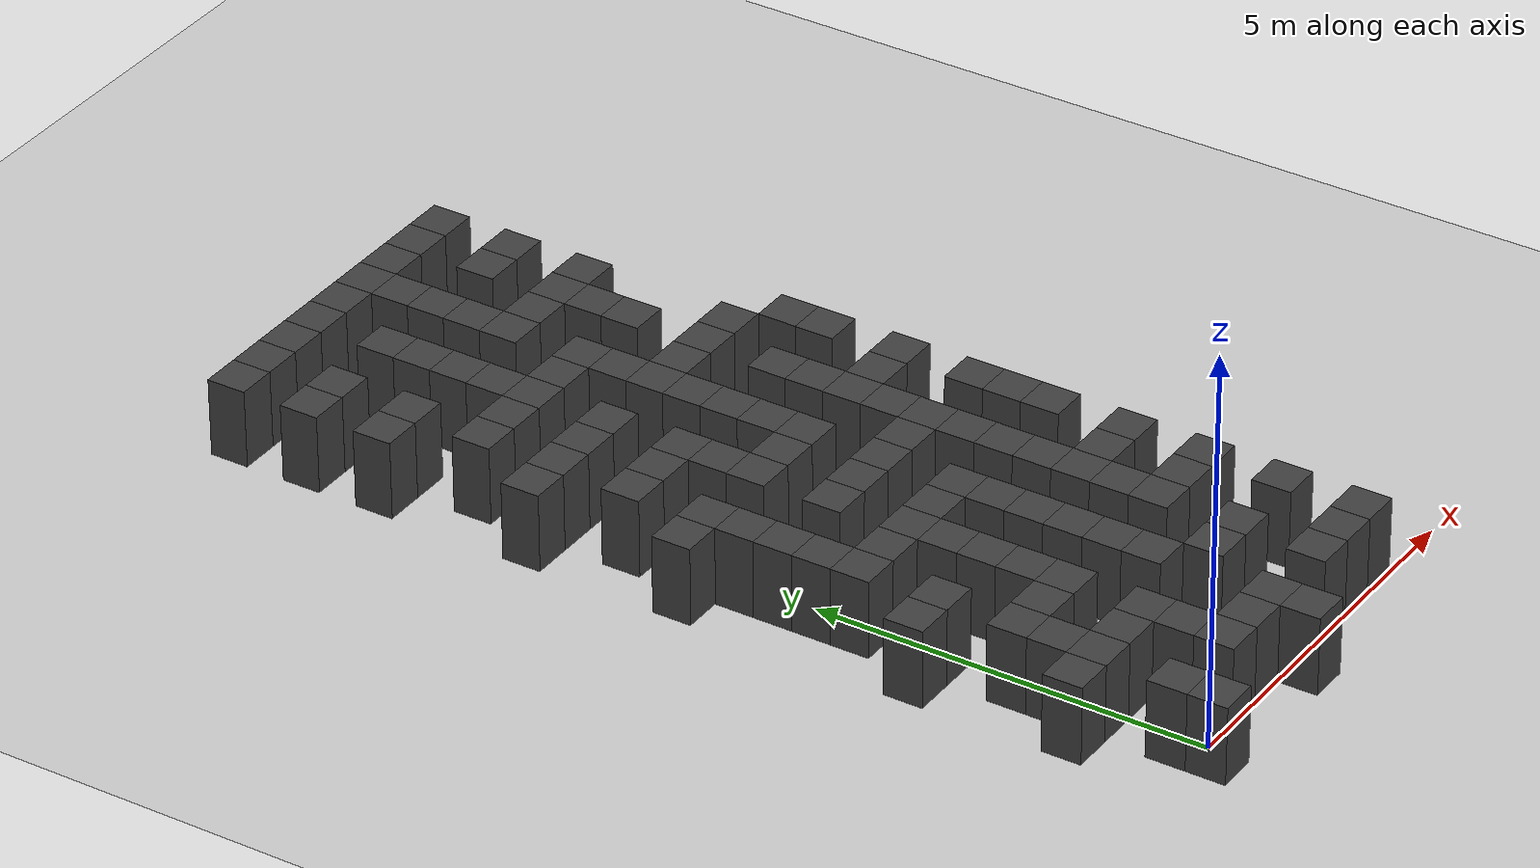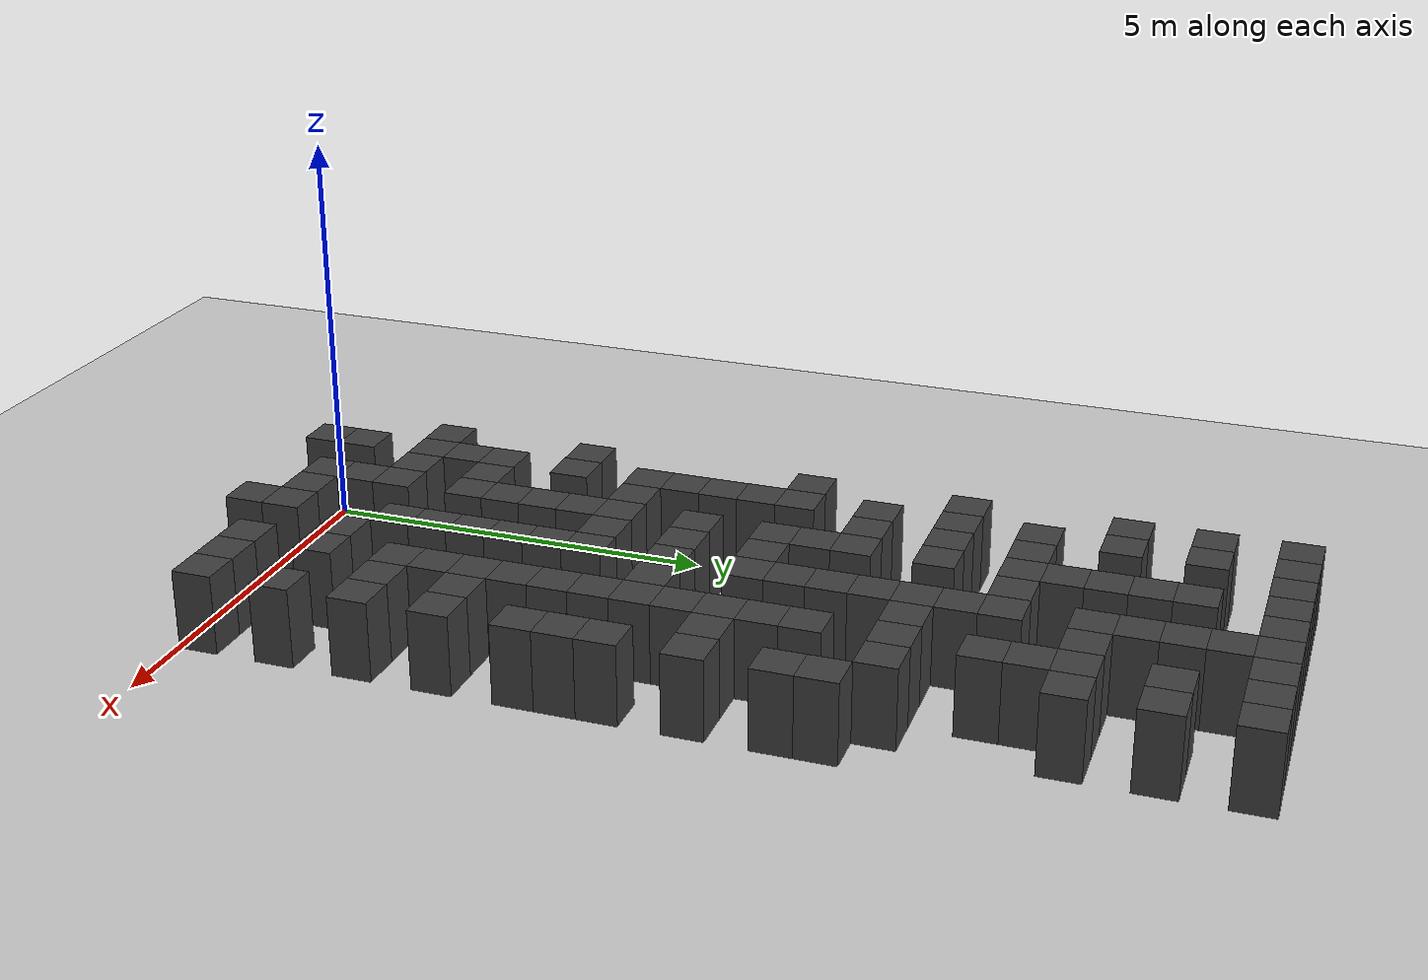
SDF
<sdf version="1.7">
 <world name="map_18553">
  <model name="ground_plane">
   <static>true</static>
   <link name="link">
    <collision name="collision">
     <geometry><plane><normal>0 0 1</normal><size>200 200</size></plane></geometry>
    </collision>
    <visual name="visual">
     <geometry><plane><normal>0 0 1</normal><size>200 200</size></plane></geometry>
     <material><ambient>0.8 0.8 0.8 1</ambient><diffuse>0.8 0.8 0.8 1</diffuse></material>
    </visual>
   </link>
  </model>
  <model name="maze_environment">
   <static>true</static>
   <link name="wall_23">
    <pose>-0.750 12.250 0.500 0 0 0</pose>
    <collision name="col"><geometry><box><size>0.5 0.5 1.0</size></box></geometry></collision>
    <visual name="vis">
     <geometry><box><size>0.5 0.5 1.0</size></box></geometry>
     <material><ambient>0.15 0.15 0.15 1</ambient><diffuse>0.25 0.25 0.25 1</diffuse></material>
    </visual>
   </link>
   <link name="wall_24">
    <pose>-0.250 12.250 0.500 0 0 0</pose>
    <collision name="col"><geometry><box><size>0.5 0.5 1.0</size></box></geometry></collision>
    <visual name="vis">
     <geometry><box><size>0.5 0.5 1.0</size></box></geometry>
     <material><ambient>0.15 0.15 0.15 1</ambient><diffuse>0.25 0.25 0.25 1</diffuse></material>
    </visual>
   </link>
   <link name="wall_25">
    <pose>0.250 12.250 0.500 0 0 0</pose>
    <collision name="col"><geometry><box><size>0.5 0.5 1.0</size></box></geometry></collision>
    <visual name="vis">
     <geometry><box><size>0.5 0.5 1.0</size></box></geometry>
     <material><ambient>0.15 0.15 0.15 1</ambient><diffuse>0.25 0.25 0.25 1</diffuse></material>
    </visual>
   </link>
   <link name="wall_26">
    <pose>0.750 12.250 0.500 0 0 0</pose>
    <collision name="col"><geometry><box><size>0.5 0.5 1.0</size></box></geometry></collision>
    <visual name="vis">
     <geometry><box><size>0.5 0.5 1.0</size></box></geometry>
     <material><ambient>0.15 0.15 0.15 1</ambient><diffuse>0.25 0.25 0.25 1</diffuse></material>
    </visual>
   </link>
   <link name="wall_27">
    <pose>1.250 12.250 0.500 0 0 0</pose>
    <collision name="col"><geometry><box><size>0.5 0.5 1.0</size></box></geometry></collision>
    <visual name="vis">
     <geometry><box><size>0.5 0.5 1.0</size></box></geometry>
     <material><ambient>0.15 0.15 0.15 1</ambient><diffuse>0.25 0.25 0.25 1</diffuse></material>
    </visual>
   </link>
   <link name="wall_28">
    <pose>1.750 12.250 0.500 0 0 0</pose>
    <collision name="col"><geometry><box><size>0.5 0.5 1.0</size></box></geometry></collision>
    <visual name="vis">
     <geometry><box><size>0.5 0.5 1.0</size></box></geometry>
     <material><ambient>0.15 0.15 0.15 1</ambient><diffuse>0.25 0.25 0.25 1</diffuse></material>
    </visual>
   </link>
   <link name="wall_29">
    <pose>2.250 12.250 0.500 0 0 0</pose>
    <collision name="col"><geometry><box><size>0.5 0.5 1.0</size></box></geometry></collision>
    <visual name="vis">
     <geometry><box><size>0.5 0.5 1.0</size></box></geometry>
     <material><ambient>0.15 0.15 0.15 1</ambient><diffuse>0.25 0.25 0.25 1</diffuse></material>
    </visual>
   </link>
   <link name="wall_30">
    <pose>2.750 12.250 0.500 0 0 0</pose>
    <collision name="col"><geometry><box><size>0.5 0.5 1.0</size></box></geometry></collision>
    <visual name="vis">
     <geometry><box><size>0.5 0.5 1.0</size></box></geometry>
     <material><ambient>0.15 0.15 0.15 1</ambient><diffuse>0.25 0.25 0.25 1</diffuse></material>
    </visual>
   </link>
   <link name="wall_31">
    <pose>3.250 12.250 0.500 0 0 0</pose>
    <collision name="col"><geometry><box><size>0.5 0.5 1.0</size></box></geometry></collision>
    <visual name="vis">
     <geometry><box><size>0.5 0.5 1.0</size></box></geometry>
     <material><ambient>0.15 0.15 0.15 1</ambient><diffuse>0.25 0.25 0.25 1</diffuse></material>
    </visual>
   </link>
   <link name="wall_54">
    <pose>1.750 11.750 0.500 0 0 0</pose>
    <collision name="col"><geometry><box><size>0.5 0.5 1.0</size></box></geometry></collision>
    <visual name="vis">
     <geometry><box><size>0.5 0.5 1.0</size></box></geometry>
     <material><ambient>0.15 0.15 0.15 1</ambient><diffuse>0.25 0.25 0.25 1</diffuse></material>
    </visual>
   </link>
   <link name="wall_73">
    <pose>-0.750 11.250 0.500 0 0 0</pose>
    <collision name="col"><geometry><box><size>0.5 0.5 1.0</size></box></geometry></collision>
    <visual name="vis">
     <geometry><box><size>0.5 0.5 1.0</size></box></geometry>
     <material><ambient>0.15 0.15 0.15 1</ambient><diffuse>0.25 0.25 0.25 1</diffuse></material>
    </visual>
   </link>
   <link name="wall_74">
    <pose>-0.250 11.250 0.500 0 0 0</pose>
    <collision name="col"><geometry><box><size>0.5 0.5 1.0</size></box></geometry></collision>
    <visual name="vis">
     <geometry><box><size>0.5 0.5 1.0</size></box></geometry>
     <material><ambient>0.15 0.15 0.15 1</ambient><diffuse>0.25 0.25 0.25 1</diffuse></material>
    </visual>
   </link>
   <link name="wall_75">
    <pose>0.750 11.250 0.500 0 0 0</pose>
    <collision name="col"><geometry><box><size>0.5 0.5 1.0</size></box></geometry></collision>
    <visual name="vis">
     <geometry><box><size>0.5 0.5 1.0</size></box></geometry>
     <material><ambient>0.15 0.15 0.15 1</ambient><diffuse>0.25 0.25 0.25 1</diffuse></material>
    </visual>
   </link>
   <link name="wall_76">
    <pose>1.750 11.250 0.500 0 0 0</pose>
    <collision name="col"><geometry><box><size>0.5 0.5 1.0</size></box></geometry></collision>
    <visual name="vis">
     <geometry><box><size>0.5 0.5 1.0</size></box></geometry>
     <material><ambient>0.15 0.15 0.15 1</ambient><diffuse>0.25 0.25 0.25 1</diffuse></material>
    </visual>
   </link>
   <link name="wall_77">
    <pose>2.750 11.250 0.500 0 0 0</pose>
    <collision name="col"><geometry><box><size>0.5 0.5 1.0</size></box></geometry></collision>
    <visual name="vis">
     <geometry><box><size>0.5 0.5 1.0</size></box></geometry>
     <material><ambient>0.15 0.15 0.15 1</ambient><diffuse>0.25 0.25 0.25 1</diffuse></material>
    </visual>
   </link>
   <link name="wall_78">
    <pose>3.250 11.250 0.500 0 0 0</pose>
    <collision name="col"><geometry><box><size>0.5 0.5 1.0</size></box></geometry></collision>
    <visual name="vis">
     <geometry><box><size>0.5 0.5 1.0</size></box></geometry>
     <material><ambient>0.15 0.15 0.15 1</ambient><diffuse>0.25 0.25 0.25 1</diffuse></material>
    </visual>
   </link>
   <link name="wall_101">
    <pose>0.750 10.750 0.500 0 0 0</pose>
    <collision name="col"><geometry><box><size>0.5 0.5 1.0</size></box></geometry></collision>
    <visual name="vis">
     <geometry><box><size>0.5 0.5 1.0</size></box></geometry>
     <material><ambient>0.15 0.15 0.15 1</ambient><diffuse>0.25 0.25 0.25 1</diffuse></material>
    </visual>
   </link>
   <link name="wall_102">
    <pose>1.750 10.750 0.500 0 0 0</pose>
    <collision name="col"><geometry><box><size>0.5 0.5 1.0</size></box></geometry></collision>
    <visual name="vis">
     <geometry><box><size>0.5 0.5 1.0</size></box></geometry>
     <material><ambient>0.15 0.15 0.15 1</ambient><diffuse>0.25 0.25 0.25 1</diffuse></material>
    </visual>
   </link>
   <link name="wall_124">
    <pose>-0.750 10.250 0.500 0 0 0</pose>
    <collision name="col"><geometry><box><size>0.5 0.5 1.0</size></box></geometry></collision>
    <visual name="vis">
     <geometry><box><size>0.5 0.5 1.0</size></box></geometry>
     <material><ambient>0.15 0.15 0.15 1</ambient><diffuse>0.25 0.25 0.25 1</diffuse></material>
    </visual>
   </link>
   <link name="wall_125">
    <pose>-0.250 10.250 0.500 0 0 0</pose>
    <collision name="col"><geometry><box><size>0.5 0.5 1.0</size></box></geometry></collision>
    <visual name="vis">
     <geometry><box><size>0.5 0.5 1.0</size></box></geometry>
     <material><ambient>0.15 0.15 0.15 1</ambient><diffuse>0.25 0.25 0.25 1</diffuse></material>
    </visual>
   </link>
   <link name="wall_126">
    <pose>0.750 10.250 0.500 0 0 0</pose>
    <collision name="col"><geometry><box><size>0.5 0.5 1.0</size></box></geometry></collision>
    <visual name="vis">
     <geometry><box><size>0.5 0.5 1.0</size></box></geometry>
     <material><ambient>0.15 0.15 0.15 1</ambient><diffuse>0.25 0.25 0.25 1</diffuse></material>
    </visual>
   </link>
   <link name="wall_127">
    <pose>1.750 10.250 0.500 0 0 0</pose>
    <collision name="col"><geometry><box><size>0.5 0.5 1.0</size></box></geometry></collision>
    <visual name="vis">
     <geometry><box><size>0.5 0.5 1.0</size></box></geometry>
     <material><ambient>0.15 0.15 0.15 1</ambient><diffuse>0.25 0.25 0.25 1</diffuse></material>
    </visual>
   </link>
   <link name="wall_128">
    <pose>2.250 10.250 0.500 0 0 0</pose>
    <collision name="col"><geometry><box><size>0.5 0.5 1.0</size></box></geometry></collision>
    <visual name="vis">
     <geometry><box><size>0.5 0.5 1.0</size></box></geometry>
     <material><ambient>0.15 0.15 0.15 1</ambient><diffuse>0.25 0.25 0.25 1</diffuse></material>
    </visual>
   </link>
   <link name="wall_129">
    <pose>2.750 10.250 0.500 0 0 0</pose>
    <collision name="col"><geometry><box><size>0.5 0.5 1.0</size></box></geometry></collision>
    <visual name="vis">
     <geometry><box><size>0.5 0.5 1.0</size></box></geometry>
     <material><ambient>0.15 0.15 0.15 1</ambient><diffuse>0.25 0.25 0.25 1</diffuse></material>
    </visual>
   </link>
   <link name="wall_130">
    <pose>3.250 10.250 0.500 0 0 0</pose>
    <collision name="col"><geometry><box><size>0.5 0.5 1.0</size></box></geometry></collision>
    <visual name="vis">
     <geometry><box><size>0.5 0.5 1.0</size></box></geometry>
     <material><ambient>0.15 0.15 0.15 1</ambient><diffuse>0.25 0.25 0.25 1</diffuse></material>
    </visual>
   </link>
   <link name="wall_153">
    <pose>0.750 9.750 0.500 0 0 0</pose>
    <collision name="col"><geometry><box><size>0.5 0.5 1.0</size></box></geometry></collision>
    <visual name="vis">
     <geometry><box><size>0.5 0.5 1.0</size></box></geometry>
     <material><ambient>0.15 0.15 0.15 1</ambient><diffuse>0.25 0.25 0.25 1</diffuse></material>
    </visual>
   </link>
   <link name="wall_154">
    <pose>2.750 9.750 0.500 0 0 0</pose>
    <collision name="col"><geometry><box><size>0.5 0.5 1.0</size></box></geometry></collision>
    <visual name="vis">
     <geometry><box><size>0.5 0.5 1.0</size></box></geometry>
     <material><ambient>0.15 0.15 0.15 1</ambient><diffuse>0.25 0.25 0.25 1</diffuse></material>
    </visual>
   </link>
   <link name="wall_176">
    <pose>-0.250 9.250 0.500 0 0 0</pose>
    <collision name="col"><geometry><box><size>0.5 0.5 1.0</size></box></geometry></collision>
    <visual name="vis">
     <geometry><box><size>0.5 0.5 1.0</size></box></geometry>
     <material><ambient>0.15 0.15 0.15 1</ambient><diffuse>0.25 0.25 0.25 1</diffuse></material>
    </visual>
   </link>
   <link name="wall_177">
    <pose>0.250 9.250 0.500 0 0 0</pose>
    <collision name="col"><geometry><box><size>0.5 0.5 1.0</size></box></geometry></collision>
    <visual name="vis">
     <geometry><box><size>0.5 0.5 1.0</size></box></geometry>
     <material><ambient>0.15 0.15 0.15 1</ambient><diffuse>0.25 0.25 0.25 1</diffuse></material>
    </visual>
   </link>
   <link name="wall_178">
    <pose>0.750 9.250 0.500 0 0 0</pose>
    <collision name="col"><geometry><box><size>0.5 0.5 1.0</size></box></geometry></collision>
    <visual name="vis">
     <geometry><box><size>0.5 0.5 1.0</size></box></geometry>
     <material><ambient>0.15 0.15 0.15 1</ambient><diffuse>0.25 0.25 0.25 1</diffuse></material>
    </visual>
   </link>
   <link name="wall_179">
    <pose>1.250 9.250 0.500 0 0 0</pose>
    <collision name="col"><geometry><box><size>0.5 0.5 1.0</size></box></geometry></collision>
    <visual name="vis">
     <geometry><box><size>0.5 0.5 1.0</size></box></geometry>
     <material><ambient>0.15 0.15 0.15 1</ambient><diffuse>0.25 0.25 0.25 1</diffuse></material>
    </visual>
   </link>
   <link name="wall_180">
    <pose>1.750 9.250 0.500 0 0 0</pose>
    <collision name="col"><geometry><box><size>0.5 0.5 1.0</size></box></geometry></collision>
    <visual name="vis">
     <geometry><box><size>0.5 0.5 1.0</size></box></geometry>
     <material><ambient>0.15 0.15 0.15 1</ambient><diffuse>0.25 0.25 0.25 1</diffuse></material>
    </visual>
   </link>
   <link name="wall_181">
    <pose>2.750 9.250 0.500 0 0 0</pose>
    <collision name="col"><geometry><box><size>0.5 0.5 1.0</size></box></geometry></collision>
    <visual name="vis">
     <geometry><box><size>0.5 0.5 1.0</size></box></geometry>
     <material><ambient>0.15 0.15 0.15 1</ambient><diffuse>0.25 0.25 0.25 1</diffuse></material>
    </visual>
   </link>
   <link name="wall_205">
    <pose>1.750 8.750 0.500 0 0 0</pose>
    <collision name="col"><geometry><box><size>0.5 0.5 1.0</size></box></geometry></collision>
    <visual name="vis">
     <geometry><box><size>0.5 0.5 1.0</size></box></geometry>
     <material><ambient>0.15 0.15 0.15 1</ambient><diffuse>0.25 0.25 0.25 1</diffuse></material>
    </visual>
   </link>
   <link name="wall_224">
    <pose>-0.750 8.250 0.500 0 0 0</pose>
    <collision name="col"><geometry><box><size>0.5 0.5 1.0</size></box></geometry></collision>
    <visual name="vis">
     <geometry><box><size>0.5 0.5 1.0</size></box></geometry>
     <material><ambient>0.15 0.15 0.15 1</ambient><diffuse>0.25 0.25 0.25 1</diffuse></material>
    </visual>
   </link>
   <link name="wall_225">
    <pose>-0.250 8.250 0.500 0 0 0</pose>
    <collision name="col"><geometry><box><size>0.5 0.5 1.0</size></box></geometry></collision>
    <visual name="vis">
     <geometry><box><size>0.5 0.5 1.0</size></box></geometry>
     <material><ambient>0.15 0.15 0.15 1</ambient><diffuse>0.25 0.25 0.25 1</diffuse></material>
    </visual>
   </link>
   <link name="wall_226">
    <pose>0.250 8.250 0.500 0 0 0</pose>
    <collision name="col"><geometry><box><size>0.5 0.5 1.0</size></box></geometry></collision>
    <visual name="vis">
     <geometry><box><size>0.5 0.5 1.0</size></box></geometry>
     <material><ambient>0.15 0.15 0.15 1</ambient><diffuse>0.25 0.25 0.25 1</diffuse></material>
    </visual>
   </link>
   <link name="wall_227">
    <pose>0.750 8.250 0.500 0 0 0</pose>
    <collision name="col"><geometry><box><size>0.5 0.5 1.0</size></box></geometry></collision>
    <visual name="vis">
     <geometry><box><size>0.5 0.5 1.0</size></box></geometry>
     <material><ambient>0.15 0.15 0.15 1</ambient><diffuse>0.25 0.25 0.25 1</diffuse></material>
    </visual>
   </link>
   <link name="wall_228">
    <pose>1.750 8.250 0.500 0 0 0</pose>
    <collision name="col"><geometry><box><size>0.5 0.5 1.0</size></box></geometry></collision>
    <visual name="vis">
     <geometry><box><size>0.5 0.5 1.0</size></box></geometry>
     <material><ambient>0.15 0.15 0.15 1</ambient><diffuse>0.25 0.25 0.25 1</diffuse></material>
    </visual>
   </link>
   <link name="wall_229">
    <pose>2.250 8.250 0.500 0 0 0</pose>
    <collision name="col"><geometry><box><size>0.5 0.5 1.0</size></box></geometry></collision>
    <visual name="vis">
     <geometry><box><size>0.5 0.5 1.0</size></box></geometry>
     <material><ambient>0.15 0.15 0.15 1</ambient><diffuse>0.25 0.25 0.25 1</diffuse></material>
    </visual>
   </link>
   <link name="wall_230">
    <pose>2.750 8.250 0.500 0 0 0</pose>
    <collision name="col"><geometry><box><size>0.5 0.5 1.0</size></box></geometry></collision>
    <visual name="vis">
     <geometry><box><size>0.5 0.5 1.0</size></box></geometry>
     <material><ambient>0.15 0.15 0.15 1</ambient><diffuse>0.25 0.25 0.25 1</diffuse></material>
    </visual>
   </link>
   <link name="wall_231">
    <pose>3.250 8.250 0.500 0 0 0</pose>
    <collision name="col"><geometry><box><size>0.5 0.5 1.0</size></box></geometry></collision>
    <visual name="vis">
     <geometry><box><size>0.5 0.5 1.0</size></box></geometry>
     <material><ambient>0.15 0.15 0.15 1</ambient><diffuse>0.25 0.25 0.25 1</diffuse></material>
    </visual>
   </link>
   <link name="wall_250">
    <pose>1.750 7.750 0.500 0 0 0</pose>
    <collision name="col"><geometry><box><size>0.5 0.5 1.0</size></box></geometry></collision>
    <visual name="vis">
     <geometry><box><size>0.5 0.5 1.0</size></box></geometry>
     <material><ambient>0.15 0.15 0.15 1</ambient><diffuse>0.25 0.25 0.25 1</diffuse></material>
    </visual>
   </link>
   <link name="wall_251">
    <pose>3.750 7.750 0.500 0 0 0</pose>
    <collision name="col"><geometry><box><size>0.5 0.5 1.0</size></box></geometry></collision>
    <visual name="vis">
     <geometry><box><size>0.5 0.5 1.0</size></box></geometry>
     <material><ambient>0.15 0.15 0.15 1</ambient><diffuse>0.25 0.25 0.25 1</diffuse></material>
    </visual>
   </link>
   <link name="wall_273">
    <pose>-0.250 7.250 0.500 0 0 0</pose>
    <collision name="col"><geometry><box><size>0.5 0.5 1.0</size></box></geometry></collision>
    <visual name="vis">
     <geometry><box><size>0.5 0.5 1.0</size></box></geometry>
     <material><ambient>0.15 0.15 0.15 1</ambient><diffuse>0.25 0.25 0.25 1</diffuse></material>
    </visual>
   </link>
   <link name="wall_274">
    <pose>0.250 7.250 0.500 0 0 0</pose>
    <collision name="col"><geometry><box><size>0.5 0.5 1.0</size></box></geometry></collision>
    <visual name="vis">
     <geometry><box><size>0.5 0.5 1.0</size></box></geometry>
     <material><ambient>0.15 0.15 0.15 1</ambient><diffuse>0.25 0.25 0.25 1</diffuse></material>
    </visual>
   </link>
   <link name="wall_275">
    <pose>0.750 7.250 0.500 0 0 0</pose>
    <collision name="col"><geometry><box><size>0.5 0.5 1.0</size></box></geometry></collision>
    <visual name="vis">
     <geometry><box><size>0.5 0.5 1.0</size></box></geometry>
     <material><ambient>0.15 0.15 0.15 1</ambient><diffuse>0.25 0.25 0.25 1</diffuse></material>
    </visual>
   </link>
   <link name="wall_276">
    <pose>1.750 7.250 0.500 0 0 0</pose>
    <collision name="col"><geometry><box><size>0.5 0.5 1.0</size></box></geometry></collision>
    <visual name="vis">
     <geometry><box><size>0.5 0.5 1.0</size></box></geometry>
     <material><ambient>0.15 0.15 0.15 1</ambient><diffuse>0.25 0.25 0.25 1</diffuse></material>
    </visual>
   </link>
   <link name="wall_277">
    <pose>2.750 7.250 0.500 0 0 0</pose>
    <collision name="col"><geometry><box><size>0.5 0.5 1.0</size></box></geometry></collision>
    <visual name="vis">
     <geometry><box><size>0.5 0.5 1.0</size></box></geometry>
     <material><ambient>0.15 0.15 0.15 1</ambient><diffuse>0.25 0.25 0.25 1</diffuse></material>
    </visual>
   </link>
   <link name="wall_278">
    <pose>3.750 7.250 0.500 0 0 0</pose>
    <collision name="col"><geometry><box><size>0.5 0.5 1.0</size></box></geometry></collision>
    <visual name="vis">
     <geometry><box><size>0.5 0.5 1.0</size></box></geometry>
     <material><ambient>0.15 0.15 0.15 1</ambient><diffuse>0.25 0.25 0.25 1</diffuse></material>
    </visual>
   </link>
   <link name="wall_297">
    <pose>0.750 6.750 0.500 0 0 0</pose>
    <collision name="col"><geometry><box><size>0.5 0.5 1.0</size></box></geometry></collision>
    <visual name="vis">
     <geometry><box><size>0.5 0.5 1.0</size></box></geometry>
     <material><ambient>0.15 0.15 0.15 1</ambient><diffuse>0.25 0.25 0.25 1</diffuse></material>
    </visual>
   </link>
   <link name="wall_298">
    <pose>1.750 6.750 0.500 0 0 0</pose>
    <collision name="col"><geometry><box><size>0.5 0.5 1.0</size></box></geometry></collision>
    <visual name="vis">
     <geometry><box><size>0.5 0.5 1.0</size></box></geometry>
     <material><ambient>0.15 0.15 0.15 1</ambient><diffuse>0.25 0.25 0.25 1</diffuse></material>
    </visual>
   </link>
   <link name="wall_299">
    <pose>2.750 6.750 0.500 0 0 0</pose>
    <collision name="col"><geometry><box><size>0.5 0.5 1.0</size></box></geometry></collision>
    <visual name="vis">
     <geometry><box><size>0.5 0.5 1.0</size></box></geometry>
     <material><ambient>0.15 0.15 0.15 1</ambient><diffuse>0.25 0.25 0.25 1</diffuse></material>
    </visual>
   </link>
   <link name="wall_321">
    <pose>-0.750 6.250 0.500 0 0 0</pose>
    <collision name="col"><geometry><box><size>0.5 0.5 1.0</size></box></geometry></collision>
    <visual name="vis">
     <geometry><box><size>0.5 0.5 1.0</size></box></geometry>
     <material><ambient>0.15 0.15 0.15 1</ambient><diffuse>0.25 0.25 0.25 1</diffuse></material>
    </visual>
   </link>
   <link name="wall_322">
    <pose>-0.250 6.250 0.500 0 0 0</pose>
    <collision name="col"><geometry><box><size>0.5 0.5 1.0</size></box></geometry></collision>
    <visual name="vis">
     <geometry><box><size>0.5 0.5 1.0</size></box></geometry>
     <material><ambient>0.15 0.15 0.15 1</ambient><diffuse>0.25 0.25 0.25 1</diffuse></material>
    </visual>
   </link>
   <link name="wall_323">
    <pose>0.750 6.250 0.500 0 0 0</pose>
    <collision name="col"><geometry><box><size>0.5 0.5 1.0</size></box></geometry></collision>
    <visual name="vis">
     <geometry><box><size>0.5 0.5 1.0</size></box></geometry>
     <material><ambient>0.15 0.15 0.15 1</ambient><diffuse>0.25 0.25 0.25 1</diffuse></material>
    </visual>
   </link>
   <link name="wall_324">
    <pose>1.250 6.250 0.500 0 0 0</pose>
    <collision name="col"><geometry><box><size>0.5 0.5 1.0</size></box></geometry></collision>
    <visual name="vis">
     <geometry><box><size>0.5 0.5 1.0</size></box></geometry>
     <material><ambient>0.15 0.15 0.15 1</ambient><diffuse>0.25 0.25 0.25 1</diffuse></material>
    </visual>
   </link>
   <link name="wall_325">
    <pose>1.750 6.250 0.500 0 0 0</pose>
    <collision name="col"><geometry><box><size>0.5 0.5 1.0</size></box></geometry></collision>
    <visual name="vis">
     <geometry><box><size>0.5 0.5 1.0</size></box></geometry>
     <material><ambient>0.15 0.15 0.15 1</ambient><diffuse>0.25 0.25 0.25 1</diffuse></material>
    </visual>
   </link>
   <link name="wall_326">
    <pose>2.750 6.250 0.500 0 0 0</pose>
    <collision name="col"><geometry><box><size>0.5 0.5 1.0</size></box></geometry></collision>
    <visual name="vis">
     <geometry><box><size>0.5 0.5 1.0</size></box></geometry>
     <material><ambient>0.15 0.15 0.15 1</ambient><diffuse>0.25 0.25 0.25 1</diffuse></material>
    </visual>
   </link>
   <link name="wall_327">
    <pose>3.250 6.250 0.500 0 0 0</pose>
    <collision name="col"><geometry><box><size>0.5 0.5 1.0</size></box></geometry></collision>
    <visual name="vis">
     <geometry><box><size>0.5 0.5 1.0</size></box></geometry>
     <material><ambient>0.15 0.15 0.15 1</ambient><diffuse>0.25 0.25 0.25 1</diffuse></material>
    </visual>
   </link>
   <link name="wall_328">
    <pose>3.750 6.250 0.500 0 0 0</pose>
    <collision name="col"><geometry><box><size>0.5 0.5 1.0</size></box></geometry></collision>
    <visual name="vis">
     <geometry><box><size>0.5 0.5 1.0</size></box></geometry>
     <material><ambient>0.15 0.15 0.15 1</ambient><diffuse>0.25 0.25 0.25 1</diffuse></material>
    </visual>
   </link>
   <link name="wall_346">
    <pose>-0.250 5.750 0.500 0 0 0</pose>
    <collision name="col"><geometry><box><size>0.5 0.5 1.0</size></box></geometry></collision>
    <visual name="vis">
     <geometry><box><size>0.5 0.5 1.0</size></box></geometry>
     <material><ambient>0.15 0.15 0.15 1</ambient><diffuse>0.25 0.25 0.25 1</diffuse></material>
    </visual>
   </link>
   <link name="wall_347">
    <pose>2.750 5.750 0.500 0 0 0</pose>
    <collision name="col"><geometry><box><size>0.5 0.5 1.0</size></box></geometry></collision>
    <visual name="vis">
     <geometry><box><size>0.5 0.5 1.0</size></box></geometry>
     <material><ambient>0.15 0.15 0.15 1</ambient><diffuse>0.25 0.25 0.25 1</diffuse></material>
    </visual>
   </link>
   <link name="wall_370">
    <pose>-0.250 5.250 0.500 0 0 0</pose>
    <collision name="col"><geometry><box><size>0.5 0.5 1.0</size></box></geometry></collision>
    <visual name="vis">
     <geometry><box><size>0.5 0.5 1.0</size></box></geometry>
     <material><ambient>0.15 0.15 0.15 1</ambient><diffuse>0.25 0.25 0.25 1</diffuse></material>
    </visual>
   </link>
   <link name="wall_371">
    <pose>0.750 5.250 0.500 0 0 0</pose>
    <collision name="col"><geometry><box><size>0.5 0.5 1.0</size></box></geometry></collision>
    <visual name="vis">
     <geometry><box><size>0.5 0.5 1.0</size></box></geometry>
     <material><ambient>0.15 0.15 0.15 1</ambient><diffuse>0.25 0.25 0.25 1</diffuse></material>
    </visual>
   </link>
   <link name="wall_372">
    <pose>1.250 5.250 0.500 0 0 0</pose>
    <collision name="col"><geometry><box><size>0.5 0.5 1.0</size></box></geometry></collision>
    <visual name="vis">
     <geometry><box><size>0.5 0.5 1.0</size></box></geometry>
     <material><ambient>0.15 0.15 0.15 1</ambient><diffuse>0.25 0.25 0.25 1</diffuse></material>
    </visual>
   </link>
   <link name="wall_373">
    <pose>1.750 5.250 0.500 0 0 0</pose>
    <collision name="col"><geometry><box><size>0.5 0.5 1.0</size></box></geometry></collision>
    <visual name="vis">
     <geometry><box><size>0.5 0.5 1.0</size></box></geometry>
     <material><ambient>0.15 0.15 0.15 1</ambient><diffuse>0.25 0.25 0.25 1</diffuse></material>
    </visual>
   </link>
   <link name="wall_374">
    <pose>2.250 5.250 0.500 0 0 0</pose>
    <collision name="col"><geometry><box><size>0.5 0.5 1.0</size></box></geometry></collision>
    <visual name="vis">
     <geometry><box><size>0.5 0.5 1.0</size></box></geometry>
     <material><ambient>0.15 0.15 0.15 1</ambient><diffuse>0.25 0.25 0.25 1</diffuse></material>
    </visual>
   </link>
   <link name="wall_375">
    <pose>2.750 5.250 0.500 0 0 0</pose>
    <collision name="col"><geometry><box><size>0.5 0.5 1.0</size></box></geometry></collision>
    <visual name="vis">
     <geometry><box><size>0.5 0.5 1.0</size></box></geometry>
     <material><ambient>0.15 0.15 0.15 1</ambient><diffuse>0.25 0.25 0.25 1</diffuse></material>
    </visual>
   </link>
   <link name="wall_376">
    <pose>3.750 5.250 0.500 0 0 0</pose>
    <collision name="col"><geometry><box><size>0.5 0.5 1.0</size></box></geometry></collision>
    <visual name="vis">
     <geometry><box><size>0.5 0.5 1.0</size></box></geometry>
     <material><ambient>0.15 0.15 0.15 1</ambient><diffuse>0.25 0.25 0.25 1</diffuse></material>
    </visual>
   </link>
   <link name="wall_395">
    <pose>-0.250 4.750 0.500 0 0 0</pose>
    <collision name="col"><geometry><box><size>0.5 0.5 1.0</size></box></geometry></collision>
    <visual name="vis">
     <geometry><box><size>0.5 0.5 1.0</size></box></geometry>
     <material><ambient>0.15 0.15 0.15 1</ambient><diffuse>0.25 0.25 0.25 1</diffuse></material>
    </visual>
   </link>
   <link name="wall_396">
    <pose>2.750 4.750 0.500 0 0 0</pose>
    <collision name="col"><geometry><box><size>0.5 0.5 1.0</size></box></geometry></collision>
    <visual name="vis">
     <geometry><box><size>0.5 0.5 1.0</size></box></geometry>
     <material><ambient>0.15 0.15 0.15 1</ambient><diffuse>0.25 0.25 0.25 1</diffuse></material>
    </visual>
   </link>
   <link name="wall_397">
    <pose>3.750 4.750 0.500 0 0 0</pose>
    <collision name="col"><geometry><box><size>0.5 0.5 1.0</size></box></geometry></collision>
    <visual name="vis">
     <geometry><box><size>0.5 0.5 1.0</size></box></geometry>
     <material><ambient>0.15 0.15 0.15 1</ambient><diffuse>0.25 0.25 0.25 1</diffuse></material>
    </visual>
   </link>
   <link name="wall_425">
    <pose>-0.250 4.250 0.500 0 0 0</pose>
    <collision name="col"><geometry><box><size>0.5 0.5 1.0</size></box></geometry></collision>
    <visual name="vis">
     <geometry><box><size>0.5 0.5 1.0</size></box></geometry>
     <material><ambient>0.15 0.15 0.15 1</ambient><diffuse>0.25 0.25 0.25 1</diffuse></material>
    </visual>
   </link>
   <link name="wall_426">
    <pose>0.250 4.250 0.500 0 0 0</pose>
    <collision name="col"><geometry><box><size>0.5 0.5 1.0</size></box></geometry></collision>
    <visual name="vis">
     <geometry><box><size>0.5 0.5 1.0</size></box></geometry>
     <material><ambient>0.15 0.15 0.15 1</ambient><diffuse>0.25 0.25 0.25 1</diffuse></material>
    </visual>
   </link>
   <link name="wall_427">
    <pose>0.750 4.250 0.500 0 0 0</pose>
    <collision name="col"><geometry><box><size>0.5 0.5 1.0</size></box></geometry></collision>
    <visual name="vis">
     <geometry><box><size>0.5 0.5 1.0</size></box></geometry>
     <material><ambient>0.15 0.15 0.15 1</ambient><diffuse>0.25 0.25 0.25 1</diffuse></material>
    </visual>
   </link>
   <link name="wall_428">
    <pose>1.250 4.250 0.500 0 0 0</pose>
    <collision name="col"><geometry><box><size>0.5 0.5 1.0</size></box></geometry></collision>
    <visual name="vis">
     <geometry><box><size>0.5 0.5 1.0</size></box></geometry>
     <material><ambient>0.15 0.15 0.15 1</ambient><diffuse>0.25 0.25 0.25 1</diffuse></material>
    </visual>
   </link>
   <link name="wall_429">
    <pose>1.750 4.250 0.500 0 0 0</pose>
    <collision name="col"><geometry><box><size>0.5 0.5 1.0</size></box></geometry></collision>
    <visual name="vis">
     <geometry><box><size>0.5 0.5 1.0</size></box></geometry>
     <material><ambient>0.15 0.15 0.15 1</ambient><diffuse>0.25 0.25 0.25 1</diffuse></material>
    </visual>
   </link>
   <link name="wall_430">
    <pose>2.750 4.250 0.500 0 0 0</pose>
    <collision name="col"><geometry><box><size>0.5 0.5 1.0</size></box></geometry></collision>
    <visual name="vis">
     <geometry><box><size>0.5 0.5 1.0</size></box></geometry>
     <material><ambient>0.15 0.15 0.15 1</ambient><diffuse>0.25 0.25 0.25 1</diffuse></material>
    </visual>
   </link>
   <link name="wall_431">
    <pose>3.750 4.250 0.500 0 0 0</pose>
    <collision name="col"><geometry><box><size>0.5 0.5 1.0</size></box></geometry></collision>
    <visual name="vis">
     <geometry><box><size>0.5 0.5 1.0</size></box></geometry>
     <material><ambient>0.15 0.15 0.15 1</ambient><diffuse>0.25 0.25 0.25 1</diffuse></material>
    </visual>
   </link>
   <link name="wall_446">
    <pose>0.750 3.750 0.500 0 0 0</pose>
    <collision name="col"><geometry><box><size>0.5 0.5 1.0</size></box></geometry></collision>
    <visual name="vis">
     <geometry><box><size>0.5 0.5 1.0</size></box></geometry>
     <material><ambient>0.15 0.15 0.15 1</ambient><diffuse>0.25 0.25 0.25 1</diffuse></material>
    </visual>
   </link>
   <link name="wall_447">
    <pose>1.750 3.750 0.500 0 0 0</pose>
    <collision name="col"><geometry><box><size>0.5 0.5 1.0</size></box></geometry></collision>
    <visual name="vis">
     <geometry><box><size>0.5 0.5 1.0</size></box></geometry>
     <material><ambient>0.15 0.15 0.15 1</ambient><diffuse>0.25 0.25 0.25 1</diffuse></material>
    </visual>
   </link>
   <link name="wall_448">
    <pose>2.750 3.750 0.500 0 0 0</pose>
    <collision name="col"><geometry><box><size>0.5 0.5 1.0</size></box></geometry></collision>
    <visual name="vis">
     <geometry><box><size>0.5 0.5 1.0</size></box></geometry>
     <material><ambient>0.15 0.15 0.15 1</ambient><diffuse>0.25 0.25 0.25 1</diffuse></material>
    </visual>
   </link>
   <link name="wall_474">
    <pose>-0.750 3.250 0.500 0 0 0</pose>
    <collision name="col"><geometry><box><size>0.5 0.5 1.0</size></box></geometry></collision>
    <visual name="vis">
     <geometry><box><size>0.5 0.5 1.0</size></box></geometry>
     <material><ambient>0.15 0.15 0.15 1</ambient><diffuse>0.25 0.25 0.25 1</diffuse></material>
    </visual>
   </link>
   <link name="wall_475">
    <pose>-0.250 3.250 0.500 0 0 0</pose>
    <collision name="col"><geometry><box><size>0.5 0.5 1.0</size></box></geometry></collision>
    <visual name="vis">
     <geometry><box><size>0.5 0.5 1.0</size></box></geometry>
     <material><ambient>0.15 0.15 0.15 1</ambient><diffuse>0.25 0.25 0.25 1</diffuse></material>
    </visual>
   </link>
   <link name="wall_476">
    <pose>0.750 3.250 0.500 0 0 0</pose>
    <collision name="col"><geometry><box><size>0.5 0.5 1.0</size></box></geometry></collision>
    <visual name="vis">
     <geometry><box><size>0.5 0.5 1.0</size></box></geometry>
     <material><ambient>0.15 0.15 0.15 1</ambient><diffuse>0.25 0.25 0.25 1</diffuse></material>
    </visual>
   </link>
   <link name="wall_477">
    <pose>1.750 3.250 0.500 0 0 0</pose>
    <collision name="col"><geometry><box><size>0.5 0.5 1.0</size></box></geometry></collision>
    <visual name="vis">
     <geometry><box><size>0.5 0.5 1.0</size></box></geometry>
     <material><ambient>0.15 0.15 0.15 1</ambient><diffuse>0.25 0.25 0.25 1</diffuse></material>
    </visual>
   </link>
   <link name="wall_478">
    <pose>2.750 3.250 0.500 0 0 0</pose>
    <collision name="col"><geometry><box><size>0.5 0.5 1.0</size></box></geometry></collision>
    <visual name="vis">
     <geometry><box><size>0.5 0.5 1.0</size></box></geometry>
     <material><ambient>0.15 0.15 0.15 1</ambient><diffuse>0.25 0.25 0.25 1</diffuse></material>
    </visual>
   </link>
   <link name="wall_479">
    <pose>3.250 3.250 0.500 0 0 0</pose>
    <collision name="col"><geometry><box><size>0.5 0.5 1.0</size></box></geometry></collision>
    <visual name="vis">
     <geometry><box><size>0.5 0.5 1.0</size></box></geometry>
     <material><ambient>0.15 0.15 0.15 1</ambient><diffuse>0.25 0.25 0.25 1</diffuse></material>
    </visual>
   </link>
   <link name="wall_480">
    <pose>3.750 3.250 0.500 0 0 0</pose>
    <collision name="col"><geometry><box><size>0.5 0.5 1.0</size></box></geometry></collision>
    <visual name="vis">
     <geometry><box><size>0.5 0.5 1.0</size></box></geometry>
     <material><ambient>0.15 0.15 0.15 1</ambient><diffuse>0.25 0.25 0.25 1</diffuse></material>
    </visual>
   </link>
   <link name="wall_503">
    <pose>0.750 2.750 0.500 0 0 0</pose>
    <collision name="col"><geometry><box><size>0.5 0.5 1.0</size></box></geometry></collision>
    <visual name="vis">
     <geometry><box><size>0.5 0.5 1.0</size></box></geometry>
     <material><ambient>0.15 0.15 0.15 1</ambient><diffuse>0.25 0.25 0.25 1</diffuse></material>
    </visual>
   </link>
   <link name="wall_504">
    <pose>1.750 2.750 0.500 0 0 0</pose>
    <collision name="col"><geometry><box><size>0.5 0.5 1.0</size></box></geometry></collision>
    <visual name="vis">
     <geometry><box><size>0.5 0.5 1.0</size></box></geometry>
     <material><ambient>0.15 0.15 0.15 1</ambient><diffuse>0.25 0.25 0.25 1</diffuse></material>
    </visual>
   </link>
   <link name="wall_505">
    <pose>2.750 2.750 0.500 0 0 0</pose>
    <collision name="col"><geometry><box><size>0.5 0.5 1.0</size></box></geometry></collision>
    <visual name="vis">
     <geometry><box><size>0.5 0.5 1.0</size></box></geometry>
     <material><ambient>0.15 0.15 0.15 1</ambient><diffuse>0.25 0.25 0.25 1</diffuse></material>
    </visual>
   </link>
   <link name="wall_522">
    <pose>-0.250 2.250 0.500 0 0 0</pose>
    <collision name="col"><geometry><box><size>0.5 0.5 1.0</size></box></geometry></collision>
    <visual name="vis">
     <geometry><box><size>0.5 0.5 1.0</size></box></geometry>
     <material><ambient>0.15 0.15 0.15 1</ambient><diffuse>0.25 0.25 0.25 1</diffuse></material>
    </visual>
   </link>
   <link name="wall_523">
    <pose>0.250 2.250 0.500 0 0 0</pose>
    <collision name="col"><geometry><box><size>0.5 0.5 1.0</size></box></geometry></collision>
    <visual name="vis">
     <geometry><box><size>0.5 0.5 1.0</size></box></geometry>
     <material><ambient>0.15 0.15 0.15 1</ambient><diffuse>0.25 0.25 0.25 1</diffuse></material>
    </visual>
   </link>
   <link name="wall_524">
    <pose>0.750 2.250 0.500 0 0 0</pose>
    <collision name="col"><geometry><box><size>0.5 0.5 1.0</size></box></geometry></collision>
    <visual name="vis">
     <geometry><box><size>0.5 0.5 1.0</size></box></geometry>
     <material><ambient>0.15 0.15 0.15 1</ambient><diffuse>0.25 0.25 0.25 1</diffuse></material>
    </visual>
   </link>
   <link name="wall_525">
    <pose>1.750 2.250 0.500 0 0 0</pose>
    <collision name="col"><geometry><box><size>0.5 0.5 1.0</size></box></geometry></collision>
    <visual name="vis">
     <geometry><box><size>0.5 0.5 1.0</size></box></geometry>
     <material><ambient>0.15 0.15 0.15 1</ambient><diffuse>0.25 0.25 0.25 1</diffuse></material>
    </visual>
   </link>
   <link name="wall_526">
    <pose>2.750 2.250 0.500 0 0 0</pose>
    <collision name="col"><geometry><box><size>0.5 0.5 1.0</size></box></geometry></collision>
    <visual name="vis">
     <geometry><box><size>0.5 0.5 1.0</size></box></geometry>
     <material><ambient>0.15 0.15 0.15 1</ambient><diffuse>0.25 0.25 0.25 1</diffuse></material>
    </visual>
   </link>
   <link name="wall_527">
    <pose>3.250 2.250 0.500 0 0 0</pose>
    <collision name="col"><geometry><box><size>0.5 0.5 1.0</size></box></geometry></collision>
    <visual name="vis">
     <geometry><box><size>0.5 0.5 1.0</size></box></geometry>
     <material><ambient>0.15 0.15 0.15 1</ambient><diffuse>0.25 0.25 0.25 1</diffuse></material>
    </visual>
   </link>
   <link name="wall_528">
    <pose>3.750 2.250 0.500 0 0 0</pose>
    <collision name="col"><geometry><box><size>0.5 0.5 1.0</size></box></geometry></collision>
    <visual name="vis">
     <geometry><box><size>0.5 0.5 1.0</size></box></geometry>
     <material><ambient>0.15 0.15 0.15 1</ambient><diffuse>0.25 0.25 0.25 1</diffuse></material>
    </visual>
   </link>
   <link name="wall_549">
    <pose>-0.250 1.750 0.500 0 0 0</pose>
    <collision name="col"><geometry><box><size>0.5 0.5 1.0</size></box></geometry></collision>
    <visual name="vis">
     <geometry><box><size>0.5 0.5 1.0</size></box></geometry>
     <material><ambient>0.15 0.15 0.15 1</ambient><diffuse>0.25 0.25 0.25 1</diffuse></material>
    </visual>
   </link>
   <link name="wall_550">
    <pose>1.750 1.750 0.500 0 0 0</pose>
    <collision name="col"><geometry><box><size>0.5 0.5 1.0</size></box></geometry></collision>
    <visual name="vis">
     <geometry><box><size>0.5 0.5 1.0</size></box></geometry>
     <material><ambient>0.15 0.15 0.15 1</ambient><diffuse>0.25 0.25 0.25 1</diffuse></material>
    </visual>
   </link>
   <link name="wall_572">
    <pose>-0.750 1.250 0.500 0 0 0</pose>
    <collision name="col"><geometry><box><size>0.5 0.5 1.0</size></box></geometry></collision>
    <visual name="vis">
     <geometry><box><size>0.5 0.5 1.0</size></box></geometry>
     <material><ambient>0.15 0.15 0.15 1</ambient><diffuse>0.25 0.25 0.25 1</diffuse></material>
    </visual>
   </link>
   <link name="wall_573">
    <pose>-0.250 1.250 0.500 0 0 0</pose>
    <collision name="col"><geometry><box><size>0.5 0.5 1.0</size></box></geometry></collision>
    <visual name="vis">
     <geometry><box><size>0.5 0.5 1.0</size></box></geometry>
     <material><ambient>0.15 0.15 0.15 1</ambient><diffuse>0.25 0.25 0.25 1</diffuse></material>
    </visual>
   </link>
   <link name="wall_574">
    <pose>0.250 1.250 0.500 0 0 0</pose>
    <collision name="col"><geometry><box><size>0.5 0.5 1.0</size></box></geometry></collision>
    <visual name="vis">
     <geometry><box><size>0.5 0.5 1.0</size></box></geometry>
     <material><ambient>0.15 0.15 0.15 1</ambient><diffuse>0.25 0.25 0.25 1</diffuse></material>
    </visual>
   </link>
   <link name="wall_575">
    <pose>0.750 1.250 0.500 0 0 0</pose>
    <collision name="col"><geometry><box><size>0.5 0.5 1.0</size></box></geometry></collision>
    <visual name="vis">
     <geometry><box><size>0.5 0.5 1.0</size></box></geometry>
     <material><ambient>0.15 0.15 0.15 1</ambient><diffuse>0.25 0.25 0.25 1</diffuse></material>
    </visual>
   </link>
   <link name="wall_576">
    <pose>2.250 1.250 0.500 0 0 0</pose>
    <collision name="col"><geometry><box><size>0.5 0.5 1.0</size></box></geometry></collision>
    <visual name="vis">
     <geometry><box><size>0.5 0.5 1.0</size></box></geometry>
     <material><ambient>0.15 0.15 0.15 1</ambient><diffuse>0.25 0.25 0.25 1</diffuse></material>
    </visual>
   </link>
   <link name="wall_577">
    <pose>2.750 1.250 0.500 0 0 0</pose>
    <collision name="col"><geometry><box><size>0.5 0.5 1.0</size></box></geometry></collision>
    <visual name="vis">
     <geometry><box><size>0.5 0.5 1.0</size></box></geometry>
     <material><ambient>0.15 0.15 0.15 1</ambient><diffuse>0.25 0.25 0.25 1</diffuse></material>
    </visual>
   </link>
   <link name="wall_578">
    <pose>3.750 1.250 0.500 0 0 0</pose>
    <collision name="col"><geometry><box><size>0.5 0.5 1.0</size></box></geometry></collision>
    <visual name="vis">
     <geometry><box><size>0.5 0.5 1.0</size></box></geometry>
     <material><ambient>0.15 0.15 0.15 1</ambient><diffuse>0.25 0.25 0.25 1</diffuse></material>
    </visual>
   </link>
   <link name="wall_600">
    <pose>0.750 0.750 0.500 0 0 0</pose>
    <collision name="col"><geometry><box><size>0.5 0.5 1.0</size></box></geometry></collision>
    <visual name="vis">
     <geometry><box><size>0.5 0.5 1.0</size></box></geometry>
     <material><ambient>0.15 0.15 0.15 1</ambient><diffuse>0.25 0.25 0.25 1</diffuse></material>
    </visual>
   </link>
   <link name="wall_623">
    <pose>-0.250 0.250 0.500 0 0 0</pose>
    <collision name="col"><geometry><box><size>0.5 0.5 1.0</size></box></geometry></collision>
    <visual name="vis">
     <geometry><box><size>0.5 0.5 1.0</size></box></geometry>
     <material><ambient>0.15 0.15 0.15 1</ambient><diffuse>0.25 0.25 0.25 1</diffuse></material>
    </visual>
   </link>
   <link name="wall_624">
    <pose>0.750 0.250 0.500 0 0 0</pose>
    <collision name="col"><geometry><box><size>0.5 0.5 1.0</size></box></geometry></collision>
    <visual name="vis">
     <geometry><box><size>0.5 0.5 1.0</size></box></geometry>
     <material><ambient>0.15 0.15 0.15 1</ambient><diffuse>0.25 0.25 0.25 1</diffuse></material>
    </visual>
   </link>
   <link name="wall_625">
    <pose>1.250 0.250 0.500 0 0 0</pose>
    <collision name="col"><geometry><box><size>0.5 0.5 1.0</size></box></geometry></collision>
    <visual name="vis">
     <geometry><box><size>0.5 0.5 1.0</size></box></geometry>
     <material><ambient>0.15 0.15 0.15 1</ambient><diffuse>0.25 0.25 0.25 1</diffuse></material>
    </visual>
   </link>
   <link name="wall_626">
    <pose>1.750 0.250 0.500 0 0 0</pose>
    <collision name="col"><geometry><box><size>0.5 0.5 1.0</size></box></geometry></collision>
    <visual name="vis">
     <geometry><box><size>0.5 0.5 1.0</size></box></geometry>
     <material><ambient>0.15 0.15 0.15 1</ambient><diffuse>0.25 0.25 0.25 1</diffuse></material>
    </visual>
   </link>
   <link name="wall_627">
    <pose>2.750 0.250 0.500 0 0 0</pose>
    <collision name="col"><geometry><box><size>0.5 0.5 1.0</size></box></geometry></collision>
    <visual name="vis">
     <geometry><box><size>0.5 0.5 1.0</size></box></geometry>
     <material><ambient>0.15 0.15 0.15 1</ambient><diffuse>0.25 0.25 0.25 1</diffuse></material>
    </visual>
   </link>
   <link name="wall_628">
    <pose>3.250 0.250 0.500 0 0 0</pose>
    <collision name="col"><geometry><box><size>0.5 0.5 1.0</size></box></geometry></collision>
    <visual name="vis">
     <geometry><box><size>0.5 0.5 1.0</size></box></geometry>
     <material><ambient>0.15 0.15 0.15 1</ambient><diffuse>0.25 0.25 0.25 1</diffuse></material>
    </visual>
   </link>
   <link name="wall_629">
    <pose>3.750 0.250 0.500 0 0 0</pose>
    <collision name="col"><geometry><box><size>0.5 0.5 1.0</size></box></geometry></collision>
    <visual name="vis">
     <geometry><box><size>0.5 0.5 1.0</size></box></geometry>
     <material><ambient>0.15 0.15 0.15 1</ambient><diffuse>0.25 0.25 0.25 1</diffuse></material>
    </visual>
   </link>
   <link name="wall_649">
    <pose>-0.250 -0.250 0.500 0 0 0</pose>
    <collision name="col"><geometry><box><size>0.5 0.5 1.0</size></box></geometry></collision>
    <visual name="vis">
     <geometry><box><size>0.5 0.5 1.0</size></box></geometry>
     <material><ambient>0.15 0.15 0.15 1</ambient><diffuse>0.25 0.25 0.25 1</diffuse></material>
    </visual>
   </link>
   <link name="wall_650">
    <pose>1.750 -0.250 0.500 0 0 0</pose>
    <collision name="col"><geometry><box><size>0.5 0.5 1.0</size></box></geometry></collision>
    <visual name="vis">
     <geometry><box><size>0.5 0.5 1.0</size></box></geometry>
     <material><ambient>0.15 0.15 0.15 1</ambient><diffuse>0.25 0.25 0.25 1</diffuse></material>
    </visual>
   </link>
  </model>
 </world>
</sdf>
